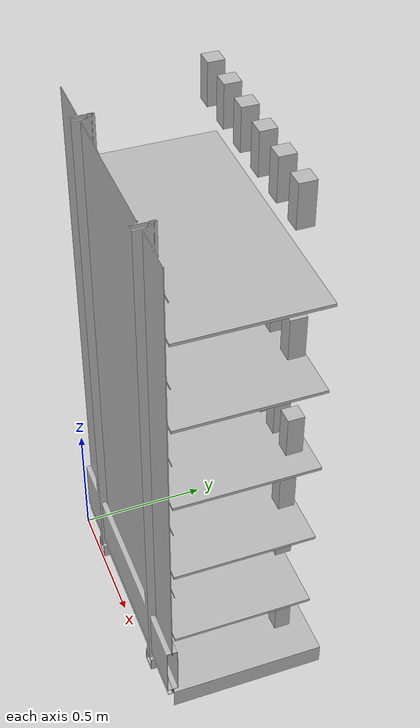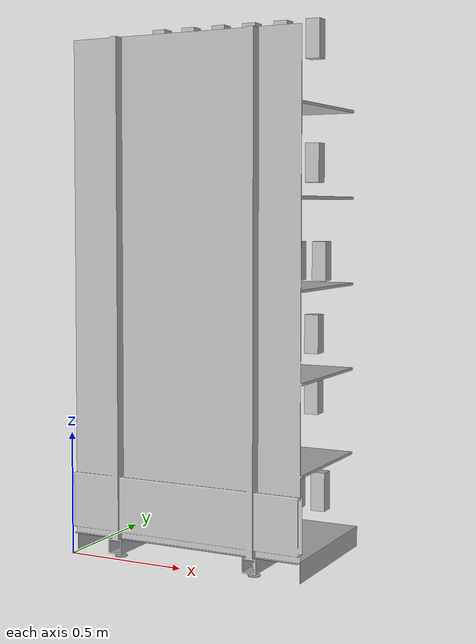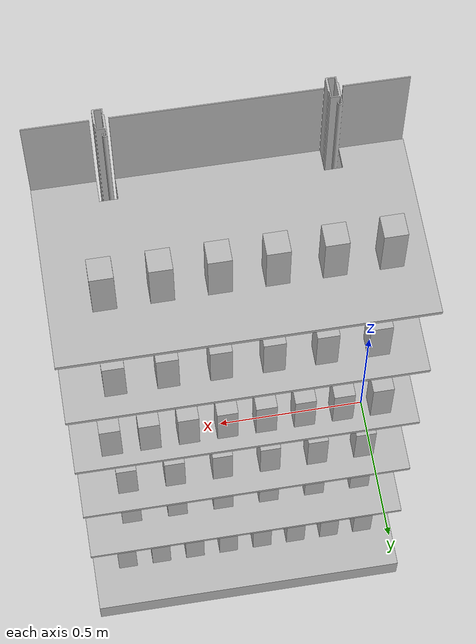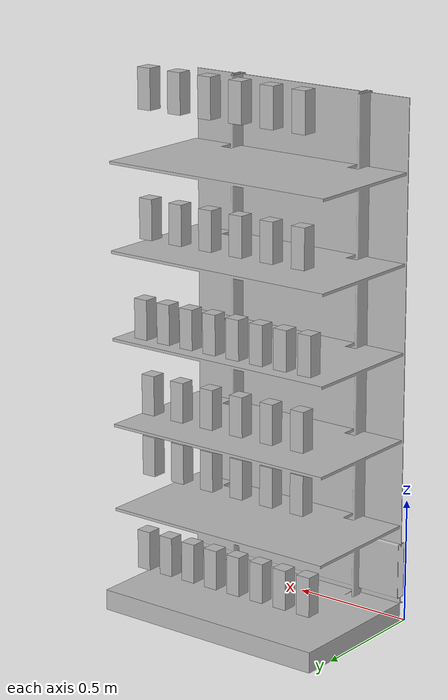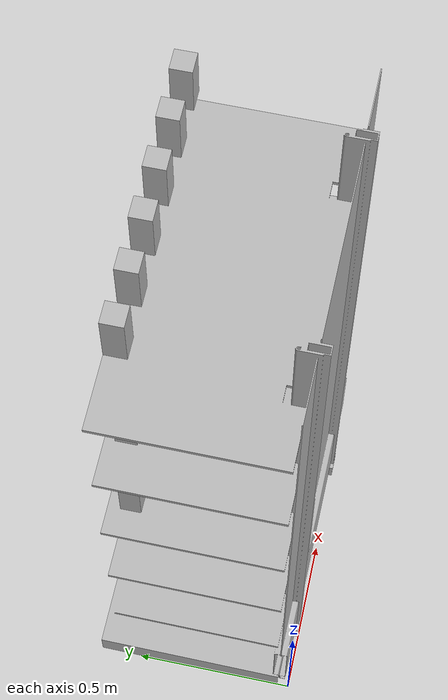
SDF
<?xml version="1.0"?>
<sdf version='1.6'>
  <model name='AH_shelf_filled_hagelslag'>
    <static>1</static>
    <link name='link'>
      <inertial>
        <mass>1</mass>
        <inertia>
          <ixx>1</ixx>
          <ixy>0</ixy>
          <ixz>0</ixz>
          <iyy>1</iyy>
          <iyz>0</iyz>
          <izz>1</izz>
        </inertia>
      </inertial>
      <pose frame=''>-0 0 0 0 0 0</pose>

      <visual name='visual'>
        <pose frame=''>0 0 0 0 0 0</pose>
        <geometry>
          <mesh>
            <uri>model://AH_shelf/AH_shelf.dae</uri>
            <scale>1 1 1</scale>
          </mesh>
        </geometry>
        <transparency>0</transparency>
        <cast_shadows>1</cast_shadows>
      </visual>

      <collision name='collision'>
        <laser_retro>0</laser_retro>
        <max_contacts>10</max_contacts>
        <pose frame=''>0 0 0 0 -0 0</pose>
        <geometry>
          <mesh>
            <uri>model://AH_shelf/AH_shelf.dae</uri>
            <scale>1 1 1</scale>
          </mesh>
        </geometry>
        <surface>
          <friction>
            <ode>
              <mu>1</mu>
              <mu2>1</mu2>
              <fdir1>0 0 0</fdir1>
              <slip1>0</slip1>
              <slip2>0</slip2>
            </ode>
            <torsional>
              <coefficient>1</coefficient>
              <patch_radius>0</patch_radius>
              <surface_radius>0</surface_radius>
              <use_patch_radius>1</use_patch_radius>
              <ode>
                <slip>0</slip>
              </ode>
            </torsional>
          </friction>
          <bounce>
            <restitution_coefficient>0</restitution_coefficient>
            <threshold>1e+06</threshold>
          </bounce>
          <contact>
            <collide_without_contact>0</collide_without_contact>
            <collide_without_contact_bitmask>1</collide_without_contact_bitmask>
            <collide_bitmask>1</collide_bitmask>
            <ode>
              <soft_cfm>0</soft_cfm>
              <soft_erp>0.2</soft_erp>
              <kp>1e+13</kp>
              <kd>1</kd>
              <max_vel>0.01</max_vel>
              <min_depth>0</min_depth>
            </ode>
            <bullet>
              <split_impulse>1</split_impulse>
              <split_impulse_penetration_threshold>-0.01</split_impulse_penetration_threshold>
              <soft_cfm>0</soft_cfm>
              <soft_erp>0.2</soft_erp>
              <kp>1e+13</kp>
              <kd>1</kd>
            </bullet>
          </contact>
        </surface>
      </collision>
    </link>

  <model name="board0">
    <pose>0 0.5 2.1 0 0 0</pose>

    <include>
      <uri>model://AH_hagelslag_melk_tag36_11_00000</uri>
      <pose>0.14285714285714285 0 0 0 0 1.57</pose>
    </include>

    <include>
      <uri>model://AH_hagelslag_melk_tag36_11_00001</uri>
      <pose>0.2857142857142857 0 0 0 0 1.57</pose>
    </include>

    <include>
      <uri>model://AH_hagelslag_melk_tag36_11_00002</uri>
      <pose>0.42857142857142855 0 0 0 0 1.57</pose>
    </include>

    <include>
      <uri>model://AH_hagelslag_melk_tag36_11_00003</uri>
      <pose>0.5714285714285714 0 0 0 0 1.57</pose>
    </include>

    <include>
      <uri>model://AH_hagelslag_melk_tag36_11_00004</uri>
      <pose>0.7142857142857142 0 0 0 0 1.57</pose>
    </include>

    <include>
      <uri>model://AH_hagelslag_melk_tag36_11_00005</uri>
      <pose>0.8571428571428571 0 0 0 0 1.57</pose>
    </include>

  </model>

  <model name="board1">
    <pose>0 0.5 1.6 0 0 0</pose>

    <include>
      <uri>model://AH_hagelslag_melk_tag36_11_00006</uri>
      <pose>0.14285714285714285 0 0 0 0 1.57</pose>
    </include>

    <include>
      <uri>model://AH_hagelslag_melk_tag36_11_00007</uri>
      <pose>0.2857142857142857 0 0 0 0 1.57</pose>
    </include>

    <include>
      <uri>model://AH_hagelslag_melk_tag36_11_00008</uri>
      <pose>0.42857142857142855 0 0 0 0 1.57</pose>
    </include>

    <include>
      <uri>model://AH_hagelslag_melk_tag36_11_00009</uri>
      <pose>0.5714285714285714 0 0 0 0 1.57</pose>
    </include>

    <include>
      <uri>model://AH_hagelslag_melk_tag36_11_00011</uri>
      <pose>0.7142857142857142 0 0 0 0 1.57</pose>
    </include>

    <include>
      <uri>model://AH_hagelslag_melk_tag36_11_00012</uri>
      <pose>0.8571428571428571 0 0 0 0 1.57</pose>
    </include>

  </model>

  <model name="board2">
    <pose>0 0.5 1.2 0 0 0</pose>

    <include>
      <uri>model://AH_hagelslag_melk_tag36_11_00013</uri>
      <pose>0.1111111111111111 0 0 0 0 1.57</pose>
    </include>

    <include>
      <uri>model://AH_hagelslag_melk_tag36_11_00014</uri>
      <pose>0.2222222222222222 0 0 0 0 1.57</pose>
    </include>

    <include>
      <uri>model://AH_hagelslag_melk_tag36_11_00015</uri>
      <pose>0.3333333333333333 0 0 0 0 1.57</pose>
    </include>

    <include>
      <uri>model://AH_hagelslag_melk_tag36_11_00016</uri>
      <pose>0.4444444444444444 0 0 0 0 1.57</pose>
    </include>

    <include>
      <uri>model://AH_hagelslag_melk_tag36_11_00017</uri>
      <pose>0.5555555555555556 0 0 0 0 1.57</pose>
    </include>

    <include>
      <uri>model://AH_hagelslag_melk_tag36_11_00018</uri>
      <pose>0.6666666666666666 0 0 0 0 1.57</pose>
    </include>

    <include>
      <uri>model://AH_hagelslag_melk_tag36_11_00019</uri>
      <pose>0.7777777777777777 0 0 0 0 1.57</pose>
    </include>

    <include>
      <uri>model://AH_hagelslag_melk_tag36_11_00020</uri>
      <pose>0.8888888888888888 0 0 0 0 1.57</pose>
    </include>

  </model>

  <model name="board3">
    <pose>0 0.5 0.9 0 0 0</pose>

    <include>
      <uri>model://AH_hagelslag_puur_tag36_11_00021</uri>
      <pose>0.14285714285714285 0 0 0 0 1.57</pose>
    </include>

    <include>
      <uri>model://AH_hagelslag_puur_tag36_11_00022</uri>
      <pose>0.2857142857142857 0 0 0 0 1.57</pose>
    </include>

    <include>
      <uri>model://AH_hagelslag_puur_tag36_11_00023</uri>
      <pose>0.42857142857142855 0 0 0 0 1.57</pose>
    </include>

    <include>
      <uri>model://AH_hagelslag_puur_tag36_11_00024</uri>
      <pose>0.5714285714285714 0 0 0 0 1.57</pose>
    </include>

    <include>
      <uri>model://AH_hagelslag_puur_tag36_11_00025</uri>
      <pose>0.7142857142857142 0 0 0 0 1.57</pose>
    </include>

    <include>
      <uri>model://AH_hagelslag_puur_tag36_11_00026</uri>
      <pose>0.8571428571428571 0 0 0 0 1.57</pose>
    </include>

  </model>

  <model name="board4">
    <pose>0 0.5 0.65 0 0 0</pose>

    <include>
      <uri>model://AH_hagelslag_puur_tag36_11_00027</uri>
      <pose>0.14285714285714285 0 0 0 0 1.57</pose>
    </include>

    <include>
      <uri>model://AH_hagelslag_puur_tag36_11_00028</uri>
      <pose>0.2857142857142857 0 0 0 0 1.57</pose>
    </include>

    <include>
      <uri>model://AH_hagelslag_puur_tag36_11_00029</uri>
      <pose>0.42857142857142855 0 0 0 0 1.57</pose>
    </include>

    <include>
      <uri>model://AH_hagelslag_puur_tag36_11_00030</uri>
      <pose>0.5714285714285714 0 0 0 0 1.57</pose>
    </include>

    <include>
      <uri>model://AH_hagelslag_puur_tag36_11_00031</uri>
      <pose>0.7142857142857142 0 0 0 0 1.57</pose>
    </include>

    <include>
      <uri>model://AH_hagelslag_puur_tag36_11_00032</uri>
      <pose>0.8571428571428571 0 0 0 0 1.57</pose>
    </include>

  </model>

  <model name="board5">
    <pose>0 0.5 0.25 0 0 0</pose>

    <include>
      <uri>model://AH_hagelslag_puur_tag36_11_00033</uri>
      <pose>0.1111111111111111 0 0 0 0 1.57</pose>
    </include>

    <include>
      <uri>model://AH_hagelslag_puur_tag36_11_00034</uri>
      <pose>0.2222222222222222 0 0 0 0 1.57</pose>
    </include>

    <include>
      <uri>model://AH_hagelslag_puur_tag36_11_00035</uri>
      <pose>0.3333333333333333 0 0 0 0 1.57</pose>
    </include>

    <include>
      <uri>model://AH_hagelslag_puur_tag36_11_00036</uri>
      <pose>0.4444444444444444 0 0 0 0 1.57</pose>
    </include>

    <include>
      <uri>model://AH_hagelslag_puur_tag36_11_00037</uri>
      <pose>0.5555555555555556 0 0 0 0 1.57</pose>
    </include>

    <include>
      <uri>model://AH_hagelslag_puur_tag36_11_00038</uri>
      <pose>0.6666666666666666 0 0 0 0 1.57</pose>
    </include>

    <include>
      <uri>model://AH_hagelslag_puur_tag36_11_00039</uri>
      <pose>0.7777777777777777 0 0 0 0 1.57</pose>
    </include>

    <include>
      <uri>model://AH_hagelslag_puur_tag36_11_00040</uri>
      <pose>0.8888888888888888 0 0 0 0 1.57</pose>
    </include>

  </model>

  </model>
</sdf>

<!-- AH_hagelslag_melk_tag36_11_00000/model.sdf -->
<sdf version='1.6'>
  <model name='AH_hagelslag_melk_tag36_11_00000'>
    <static>0</static>
    <link name='link_0'>

      <inertial>
        <mass>0.1</mass>
        <inertia>
          <ixx>1.4e-03</ixx>
          <ixy>0</ixy>
          <ixz>0</ixz>
          <iyy>1.4e-03</iyy>
          <iyz>0</iyz>
          <izz>2.8e-03</izz>
        </inertia>
      </inertial>

      <pose frame=''>-0 0 0 0 -0 0</pose>

      <visual name='visual'>
        <pose frame=''>0 0 0 0 -0 0</pose>
        <geometry>
          <mesh>
            <uri>model://AH_hagelslag_melk/AH_hagelslag_melk_tag36_11_00000/AH_hagelslag_melk_tag36_11_00000.dae</uri>
            <scale>1 1 1</scale>
          </mesh>
        </geometry>
        <transparency>0</transparency>
        <cast_shadows>1</cast_shadows>
      </visual>

      <collision name='collision'>
        <laser_retro>0</laser_retro>
        <max_contacts>10</max_contacts>
        <pose frame=''>0 0 0 0 -0 0</pose>
        <geometry>
          <mesh>
            <uri>model://AH_hagelslag_melk/AH_hagelslag_melk_tag36_11_00000/AH_hagelslag_melk_tag36_11_00000.dae</uri>
            <scale>1 1 1</scale>
          </mesh>
        </geometry>
        <surface>
          <friction>
            <ode>
              <mu>1</mu>
              <mu2>1</mu2>
              <fdir1>0 0 0</fdir1>
              <slip1>0</slip1>
              <slip2>0</slip2>
            </ode>
            <torsional>
              <coefficient>1</coefficient>
              <patch_radius>0</patch_radius>
              <surface_radius>0</surface_radius>
              <use_patch_radius>1</use_patch_radius>
              <ode>
                <slip>0</slip>
              </ode>
            </torsional>
          </friction>
          <bounce>
            <restitution_coefficient>0</restitution_coefficient>
            <threshold>1e+06</threshold>
          </bounce>
          <contact>
            <collide_without_contact>0</collide_without_contact>
            <collide_without_contact_bitmask>1</collide_without_contact_bitmask>
            <collide_bitmask>1</collide_bitmask>
            <ode>
              <soft_cfm>0</soft_cfm>
              <soft_erp>0.2</soft_erp>
              <kp>1e+13</kp>
              <kd>1</kd>
              <max_vel>0.01</max_vel>
              <min_depth>0</min_depth>
            </ode>
            <bullet>
              <split_impulse>1</split_impulse>
              <split_impulse_penetration_threshold>-0.01</split_impulse_penetration_threshold>
              <soft_cfm>0</soft_cfm>
              <soft_erp>0.2</soft_erp>
              <kp>1e+13</kp>
              <kd>1</kd>
            </bullet>
          </contact>
        </surface>
      </collision>

    </link>
  </model>
</sdf>

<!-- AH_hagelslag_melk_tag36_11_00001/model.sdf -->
<sdf version='1.6'>
  <model name='AH_hagelslag_melk_tag36_11_00001'>
    <static>0</static>
    <link name='link_0'>

      <inertial>
        <mass>0.1</mass>
        <inertia>
          <ixx>1.4e-03</ixx>
          <ixy>0</ixy>
          <ixz>0</ixz>
          <iyy>1.4e-03</iyy>
          <iyz>0</iyz>
          <izz>2.8e-03</izz>
        </inertia>
      </inertial>

      <pose frame=''>-0 0 0 0 -0 0</pose>

      <visual name='visual'>
        <pose frame=''>0 0 0 0 -0 0</pose>
        <geometry>
          <mesh>
            <uri>model://AH_hagelslag_melk/AH_hagelslag_melk_tag36_11_00001/AH_hagelslag_melk_tag36_11_00001.dae</uri>
            <scale>1 1 1</scale>
          </mesh>
        </geometry>
        <transparency>0</transparency>
        <cast_shadows>1</cast_shadows>
      </visual>

      <collision name='collision'>
        <laser_retro>0</laser_retro>
        <max_contacts>10</max_contacts>
        <pose frame=''>0 0 0 0 -0 0</pose>
        <geometry>
          <mesh>
            <uri>model://AH_hagelslag_melk/AH_hagelslag_melk_tag36_11_00001/AH_hagelslag_melk_tag36_11_00001.dae</uri>
            <scale>1 1 1</scale>
          </mesh>
        </geometry>
        <surface>
          <friction>
            <ode>
              <mu>1</mu>
              <mu2>1</mu2>
              <fdir1>0 0 0</fdir1>
              <slip1>0</slip1>
              <slip2>0</slip2>
            </ode>
            <torsional>
              <coefficient>1</coefficient>
              <patch_radius>0</patch_radius>
              <surface_radius>0</surface_radius>
              <use_patch_radius>1</use_patch_radius>
              <ode>
                <slip>0</slip>
              </ode>
            </torsional>
          </friction>
          <bounce>
            <restitution_coefficient>0</restitution_coefficient>
            <threshold>1e+06</threshold>
          </bounce>
          <contact>
            <collide_without_contact>0</collide_without_contact>
            <collide_without_contact_bitmask>1</collide_without_contact_bitmask>
            <collide_bitmask>1</collide_bitmask>
            <ode>
              <soft_cfm>0</soft_cfm>
              <soft_erp>0.2</soft_erp>
              <kp>1e+13</kp>
              <kd>1</kd>
              <max_vel>0.01</max_vel>
              <min_depth>0</min_depth>
            </ode>
            <bullet>
              <split_impulse>1</split_impulse>
              <split_impulse_penetration_threshold>-0.01</split_impulse_penetration_threshold>
              <soft_cfm>0</soft_cfm>
              <soft_erp>0.2</soft_erp>
              <kp>1e+13</kp>
              <kd>1</kd>
            </bullet>
          </contact>
        </surface>
      </collision>

    </link>
  </model>
</sdf>

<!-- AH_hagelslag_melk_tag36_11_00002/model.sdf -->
<sdf version='1.6'>
  <model name='AH_hagelslag_melk_tag36_11_00002'>
    <static>0</static>
    <link name='link_0'>

      <inertial>
        <mass>0.1</mass>
        <inertia>
          <ixx>1.4e-03</ixx>
          <ixy>0</ixy>
          <ixz>0</ixz>
          <iyy>1.4e-03</iyy>
          <iyz>0</iyz>
          <izz>2.8e-03</izz>
        </inertia>
      </inertial>

      <pose frame=''>-0 0 0 0 -0 0</pose>

      <visual name='visual'>
        <pose frame=''>0 0 0 0 -0 0</pose>
        <geometry>
          <mesh>
            <uri>model://AH_hagelslag_melk/AH_hagelslag_melk_tag36_11_00002/AH_hagelslag_melk_tag36_11_00002.dae</uri>
            <scale>1 1 1</scale>
          </mesh>
        </geometry>
        <transparency>0</transparency>
        <cast_shadows>1</cast_shadows>
      </visual>

      <collision name='collision'>
        <laser_retro>0</laser_retro>
        <max_contacts>10</max_contacts>
        <pose frame=''>0 0 0 0 -0 0</pose>
        <geometry>
          <mesh>
            <uri>model://AH_hagelslag_melk/AH_hagelslag_melk_tag36_11_00002/AH_hagelslag_melk_tag36_11_00002.dae</uri>
            <scale>1 1 1</scale>
          </mesh>
        </geometry>
        <surface>
          <friction>
            <ode>
              <mu>1</mu>
              <mu2>1</mu2>
              <fdir1>0 0 0</fdir1>
              <slip1>0</slip1>
              <slip2>0</slip2>
            </ode>
            <torsional>
              <coefficient>1</coefficient>
              <patch_radius>0</patch_radius>
              <surface_radius>0</surface_radius>
              <use_patch_radius>1</use_patch_radius>
              <ode>
                <slip>0</slip>
              </ode>
            </torsional>
          </friction>
          <bounce>
            <restitution_coefficient>0</restitution_coefficient>
            <threshold>1e+06</threshold>
          </bounce>
          <contact>
            <collide_without_contact>0</collide_without_contact>
            <collide_without_contact_bitmask>1</collide_without_contact_bitmask>
            <collide_bitmask>1</collide_bitmask>
            <ode>
              <soft_cfm>0</soft_cfm>
              <soft_erp>0.2</soft_erp>
              <kp>1e+13</kp>
              <kd>1</kd>
              <max_vel>0.01</max_vel>
              <min_depth>0</min_depth>
            </ode>
            <bullet>
              <split_impulse>1</split_impulse>
              <split_impulse_penetration_threshold>-0.01</split_impulse_penetration_threshold>
              <soft_cfm>0</soft_cfm>
              <soft_erp>0.2</soft_erp>
              <kp>1e+13</kp>
              <kd>1</kd>
            </bullet>
          </contact>
        </surface>
      </collision>

    </link>
  </model>
</sdf>

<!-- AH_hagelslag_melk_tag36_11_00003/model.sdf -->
<sdf version='1.6'>
  <model name='AH_hagelslag_melk_tag36_11_00003'>
    <static>0</static>
    <link name='link_0'>

      <inertial>
        <mass>0.1</mass>
        <inertia>
          <ixx>1.4e-03</ixx>
          <ixy>0</ixy>
          <ixz>0</ixz>
          <iyy>1.4e-03</iyy>
          <iyz>0</iyz>
          <izz>2.8e-03</izz>
        </inertia>
      </inertial>

      <pose frame=''>-0 0 0 0 -0 0</pose>

      <visual name='visual'>
        <pose frame=''>0 0 0 0 -0 0</pose>
        <geometry>
          <mesh>
            <uri>model://AH_hagelslag_melk/AH_hagelslag_melk_tag36_11_00003/AH_hagelslag_melk_tag36_11_00003.dae</uri>
            <scale>1 1 1</scale>
          </mesh>
        </geometry>
        <transparency>0</transparency>
        <cast_shadows>1</cast_shadows>
      </visual>

      <collision name='collision'>
        <laser_retro>0</laser_retro>
        <max_contacts>10</max_contacts>
        <pose frame=''>0 0 0 0 -0 0</pose>
        <geometry>
          <mesh>
            <uri>model://AH_hagelslag_melk/AH_hagelslag_melk_tag36_11_00003/AH_hagelslag_melk_tag36_11_00003.dae</uri>
            <scale>1 1 1</scale>
          </mesh>
        </geometry>
        <surface>
          <friction>
            <ode>
              <mu>1</mu>
              <mu2>1</mu2>
              <fdir1>0 0 0</fdir1>
              <slip1>0</slip1>
              <slip2>0</slip2>
            </ode>
            <torsional>
              <coefficient>1</coefficient>
              <patch_radius>0</patch_radius>
              <surface_radius>0</surface_radius>
              <use_patch_radius>1</use_patch_radius>
              <ode>
                <slip>0</slip>
              </ode>
            </torsional>
          </friction>
          <bounce>
            <restitution_coefficient>0</restitution_coefficient>
            <threshold>1e+06</threshold>
          </bounce>
          <contact>
            <collide_without_contact>0</collide_without_contact>
            <collide_without_contact_bitmask>1</collide_without_contact_bitmask>
            <collide_bitmask>1</collide_bitmask>
            <ode>
              <soft_cfm>0</soft_cfm>
              <soft_erp>0.2</soft_erp>
              <kp>1e+13</kp>
              <kd>1</kd>
              <max_vel>0.01</max_vel>
              <min_depth>0</min_depth>
            </ode>
            <bullet>
              <split_impulse>1</split_impulse>
              <split_impulse_penetration_threshold>-0.01</split_impulse_penetration_threshold>
              <soft_cfm>0</soft_cfm>
              <soft_erp>0.2</soft_erp>
              <kp>1e+13</kp>
              <kd>1</kd>
            </bullet>
          </contact>
        </surface>
      </collision>

    </link>
  </model>
</sdf>

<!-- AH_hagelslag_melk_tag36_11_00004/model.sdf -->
<sdf version='1.6'>
  <model name='AH_hagelslag_melk_tag36_11_00004'>
    <static>0</static>
    <link name='link_0'>

      <inertial>
        <mass>0.1</mass>
        <inertia>
          <ixx>1.4e-03</ixx>
          <ixy>0</ixy>
          <ixz>0</ixz>
          <iyy>1.4e-03</iyy>
          <iyz>0</iyz>
          <izz>2.8e-03</izz>
        </inertia>
      </inertial>

      <pose frame=''>-0 0 0 0 -0 0</pose>

      <visual name='visual'>
        <pose frame=''>0 0 0 0 -0 0</pose>
        <geometry>
          <mesh>
            <uri>model://AH_hagelslag_melk/AH_hagelslag_melk_tag36_11_00004/AH_hagelslag_melk_tag36_11_00004.dae</uri>
            <scale>1 1 1</scale>
          </mesh>
        </geometry>
        <transparency>0</transparency>
        <cast_shadows>1</cast_shadows>
      </visual>

      <collision name='collision'>
        <laser_retro>0</laser_retro>
        <max_contacts>10</max_contacts>
        <pose frame=''>0 0 0 0 -0 0</pose>
        <geometry>
          <mesh>
            <uri>model://AH_hagelslag_melk/AH_hagelslag_melk_tag36_11_00004/AH_hagelslag_melk_tag36_11_00004.dae</uri>
            <scale>1 1 1</scale>
          </mesh>
        </geometry>
        <surface>
          <friction>
            <ode>
              <mu>1</mu>
              <mu2>1</mu2>
              <fdir1>0 0 0</fdir1>
              <slip1>0</slip1>
              <slip2>0</slip2>
            </ode>
            <torsional>
              <coefficient>1</coefficient>
              <patch_radius>0</patch_radius>
              <surface_radius>0</surface_radius>
              <use_patch_radius>1</use_patch_radius>
              <ode>
                <slip>0</slip>
              </ode>
            </torsional>
          </friction>
          <bounce>
            <restitution_coefficient>0</restitution_coefficient>
            <threshold>1e+06</threshold>
          </bounce>
          <contact>
            <collide_without_contact>0</collide_without_contact>
            <collide_without_contact_bitmask>1</collide_without_contact_bitmask>
            <collide_bitmask>1</collide_bitmask>
            <ode>
              <soft_cfm>0</soft_cfm>
              <soft_erp>0.2</soft_erp>
              <kp>1e+13</kp>
              <kd>1</kd>
              <max_vel>0.01</max_vel>
              <min_depth>0</min_depth>
            </ode>
            <bullet>
              <split_impulse>1</split_impulse>
              <split_impulse_penetration_threshold>-0.01</split_impulse_penetration_threshold>
              <soft_cfm>0</soft_cfm>
              <soft_erp>0.2</soft_erp>
              <kp>1e+13</kp>
              <kd>1</kd>
            </bullet>
          </contact>
        </surface>
      </collision>

    </link>
  </model>
</sdf>

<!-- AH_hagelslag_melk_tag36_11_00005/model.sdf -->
<sdf version='1.6'>
  <model name='AH_hagelslag_melk_tag36_11_00005'>
    <static>0</static>
    <link name='link_0'>

      <inertial>
        <mass>0.1</mass>
        <inertia>
          <ixx>1.4e-03</ixx>
          <ixy>0</ixy>
          <ixz>0</ixz>
          <iyy>1.4e-03</iyy>
          <iyz>0</iyz>
          <izz>2.8e-03</izz>
        </inertia>
      </inertial>

      <pose frame=''>-0 0 0 0 -0 0</pose>

      <visual name='visual'>
        <pose frame=''>0 0 0 0 -0 0</pose>
        <geometry>
          <mesh>
            <uri>model://AH_hagelslag_melk/AH_hagelslag_melk_tag36_11_00005/AH_hagelslag_melk_tag36_11_00005.dae</uri>
            <scale>1 1 1</scale>
          </mesh>
        </geometry>
        <transparency>0</transparency>
        <cast_shadows>1</cast_shadows>
      </visual>

      <collision name='collision'>
        <laser_retro>0</laser_retro>
        <max_contacts>10</max_contacts>
        <pose frame=''>0 0 0 0 -0 0</pose>
        <geometry>
          <mesh>
            <uri>model://AH_hagelslag_melk/AH_hagelslag_melk_tag36_11_00005/AH_hagelslag_melk_tag36_11_00005.dae</uri>
            <scale>1 1 1</scale>
          </mesh>
        </geometry>
        <surface>
          <friction>
            <ode>
              <mu>1</mu>
              <mu2>1</mu2>
              <fdir1>0 0 0</fdir1>
              <slip1>0</slip1>
              <slip2>0</slip2>
            </ode>
            <torsional>
              <coefficient>1</coefficient>
              <patch_radius>0</patch_radius>
              <surface_radius>0</surface_radius>
              <use_patch_radius>1</use_patch_radius>
              <ode>
                <slip>0</slip>
              </ode>
            </torsional>
          </friction>
          <bounce>
            <restitution_coefficient>0</restitution_coefficient>
            <threshold>1e+06</threshold>
          </bounce>
          <contact>
            <collide_without_contact>0</collide_without_contact>
            <collide_without_contact_bitmask>1</collide_without_contact_bitmask>
            <collide_bitmask>1</collide_bitmask>
            <ode>
              <soft_cfm>0</soft_cfm>
              <soft_erp>0.2</soft_erp>
              <kp>1e+13</kp>
              <kd>1</kd>
              <max_vel>0.01</max_vel>
              <min_depth>0</min_depth>
            </ode>
            <bullet>
              <split_impulse>1</split_impulse>
              <split_impulse_penetration_threshold>-0.01</split_impulse_penetration_threshold>
              <soft_cfm>0</soft_cfm>
              <soft_erp>0.2</soft_erp>
              <kp>1e+13</kp>
              <kd>1</kd>
            </bullet>
          </contact>
        </surface>
      </collision>

    </link>
  </model>
</sdf>

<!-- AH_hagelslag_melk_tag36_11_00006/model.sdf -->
<sdf version='1.6'>
  <model name='AH_hagelslag_melk_tag36_11_00006'>
    <static>0</static>
    <link name='link_0'>

      <inertial>
        <mass>0.1</mass>
        <inertia>
          <ixx>1.4e-03</ixx>
          <ixy>0</ixy>
          <ixz>0</ixz>
          <iyy>1.4e-03</iyy>
          <iyz>0</iyz>
          <izz>2.8e-03</izz>
        </inertia>
      </inertial>

      <pose frame=''>-0 0 0 0 -0 0</pose>

      <visual name='visual'>
        <pose frame=''>0 0 0 0 -0 0</pose>
        <geometry>
          <mesh>
            <uri>model://AH_hagelslag_melk/AH_hagelslag_melk_tag36_11_00006/AH_hagelslag_melk_tag36_11_00006.dae</uri>
            <scale>1 1 1</scale>
          </mesh>
        </geometry>
        <transparency>0</transparency>
        <cast_shadows>1</cast_shadows>
      </visual>

      <collision name='collision'>
        <laser_retro>0</laser_retro>
        <max_contacts>10</max_contacts>
        <pose frame=''>0 0 0 0 -0 0</pose>
        <geometry>
          <mesh>
            <uri>model://AH_hagelslag_melk/AH_hagelslag_melk_tag36_11_00006/AH_hagelslag_melk_tag36_11_00006.dae</uri>
            <scale>1 1 1</scale>
          </mesh>
        </geometry>
        <surface>
          <friction>
            <ode>
              <mu>1</mu>
              <mu2>1</mu2>
              <fdir1>0 0 0</fdir1>
              <slip1>0</slip1>
              <slip2>0</slip2>
            </ode>
            <torsional>
              <coefficient>1</coefficient>
              <patch_radius>0</patch_radius>
              <surface_radius>0</surface_radius>
              <use_patch_radius>1</use_patch_radius>
              <ode>
                <slip>0</slip>
              </ode>
            </torsional>
          </friction>
          <bounce>
            <restitution_coefficient>0</restitution_coefficient>
            <threshold>1e+06</threshold>
          </bounce>
          <contact>
            <collide_without_contact>0</collide_without_contact>
            <collide_without_contact_bitmask>1</collide_without_contact_bitmask>
            <collide_bitmask>1</collide_bitmask>
            <ode>
              <soft_cfm>0</soft_cfm>
              <soft_erp>0.2</soft_erp>
              <kp>1e+13</kp>
              <kd>1</kd>
              <max_vel>0.01</max_vel>
              <min_depth>0</min_depth>
            </ode>
            <bullet>
              <split_impulse>1</split_impulse>
              <split_impulse_penetration_threshold>-0.01</split_impulse_penetration_threshold>
              <soft_cfm>0</soft_cfm>
              <soft_erp>0.2</soft_erp>
              <kp>1e+13</kp>
              <kd>1</kd>
            </bullet>
          </contact>
        </surface>
      </collision>

    </link>
  </model>
</sdf>

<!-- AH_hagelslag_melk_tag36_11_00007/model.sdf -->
<sdf version='1.6'>
  <model name='AH_hagelslag_melk_tag36_11_00007'>
    <static>0</static>
    <link name='link_0'>

      <inertial>
        <mass>0.1</mass>
        <inertia>
          <ixx>1.4e-03</ixx>
          <ixy>0</ixy>
          <ixz>0</ixz>
          <iyy>1.4e-03</iyy>
          <iyz>0</iyz>
          <izz>2.8e-03</izz>
        </inertia>
      </inertial>

      <pose frame=''>-0 0 0 0 -0 0</pose>

      <visual name='visual'>
        <pose frame=''>0 0 0 0 -0 0</pose>
        <geometry>
          <mesh>
            <uri>model://AH_hagelslag_melk/AH_hagelslag_melk_tag36_11_00007/AH_hagelslag_melk_tag36_11_00007.dae</uri>
            <scale>1 1 1</scale>
          </mesh>
        </geometry>
        <transparency>0</transparency>
        <cast_shadows>1</cast_shadows>
      </visual>

      <collision name='collision'>
        <laser_retro>0</laser_retro>
        <max_contacts>10</max_contacts>
        <pose frame=''>0 0 0 0 -0 0</pose>
        <geometry>
          <mesh>
            <uri>model://AH_hagelslag_melk/AH_hagelslag_melk_tag36_11_00007/AH_hagelslag_melk_tag36_11_00007.dae</uri>
            <scale>1 1 1</scale>
          </mesh>
        </geometry>
        <surface>
          <friction>
            <ode>
              <mu>1</mu>
              <mu2>1</mu2>
              <fdir1>0 0 0</fdir1>
              <slip1>0</slip1>
              <slip2>0</slip2>
            </ode>
            <torsional>
              <coefficient>1</coefficient>
              <patch_radius>0</patch_radius>
              <surface_radius>0</surface_radius>
              <use_patch_radius>1</use_patch_radius>
              <ode>
                <slip>0</slip>
              </ode>
            </torsional>
          </friction>
          <bounce>
            <restitution_coefficient>0</restitution_coefficient>
            <threshold>1e+06</threshold>
          </bounce>
          <contact>
            <collide_without_contact>0</collide_without_contact>
            <collide_without_contact_bitmask>1</collide_without_contact_bitmask>
            <collide_bitmask>1</collide_bitmask>
            <ode>
              <soft_cfm>0</soft_cfm>
              <soft_erp>0.2</soft_erp>
              <kp>1e+13</kp>
              <kd>1</kd>
              <max_vel>0.01</max_vel>
              <min_depth>0</min_depth>
            </ode>
            <bullet>
              <split_impulse>1</split_impulse>
              <split_impulse_penetration_threshold>-0.01</split_impulse_penetration_threshold>
              <soft_cfm>0</soft_cfm>
              <soft_erp>0.2</soft_erp>
              <kp>1e+13</kp>
              <kd>1</kd>
            </bullet>
          </contact>
        </surface>
      </collision>

    </link>
  </model>
</sdf>

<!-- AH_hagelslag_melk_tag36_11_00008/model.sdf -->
<sdf version='1.6'>
  <model name='AH_hagelslag_melk_tag36_11_00008'>
    <static>0</static>
    <link name='link_0'>

      <inertial>
        <mass>0.1</mass>
        <inertia>
          <ixx>1.4e-03</ixx>
          <ixy>0</ixy>
          <ixz>0</ixz>
          <iyy>1.4e-03</iyy>
          <iyz>0</iyz>
          <izz>2.8e-03</izz>
        </inertia>
      </inertial>

      <pose frame=''>-0 0 0 0 -0 0</pose>

      <visual name='visual'>
        <pose frame=''>0 0 0 0 -0 0</pose>
        <geometry>
          <mesh>
            <uri>model://AH_hagelslag_melk/AH_hagelslag_melk_tag36_11_00008/AH_hagelslag_melk_tag36_11_00008.dae</uri>
            <scale>1 1 1</scale>
          </mesh>
        </geometry>
        <transparency>0</transparency>
        <cast_shadows>1</cast_shadows>
      </visual>

      <collision name='collision'>
        <laser_retro>0</laser_retro>
        <max_contacts>10</max_contacts>
        <pose frame=''>0 0 0 0 -0 0</pose>
        <geometry>
          <mesh>
            <uri>model://AH_hagelslag_melk/AH_hagelslag_melk_tag36_11_00008/AH_hagelslag_melk_tag36_11_00008.dae</uri>
            <scale>1 1 1</scale>
          </mesh>
        </geometry>
        <surface>
          <friction>
            <ode>
              <mu>1</mu>
              <mu2>1</mu2>
              <fdir1>0 0 0</fdir1>
              <slip1>0</slip1>
              <slip2>0</slip2>
            </ode>
            <torsional>
              <coefficient>1</coefficient>
              <patch_radius>0</patch_radius>
              <surface_radius>0</surface_radius>
              <use_patch_radius>1</use_patch_radius>
              <ode>
                <slip>0</slip>
              </ode>
            </torsional>
          </friction>
          <bounce>
            <restitution_coefficient>0</restitution_coefficient>
            <threshold>1e+06</threshold>
          </bounce>
          <contact>
            <collide_without_contact>0</collide_without_contact>
            <collide_without_contact_bitmask>1</collide_without_contact_bitmask>
            <collide_bitmask>1</collide_bitmask>
            <ode>
              <soft_cfm>0</soft_cfm>
              <soft_erp>0.2</soft_erp>
              <kp>1e+13</kp>
              <kd>1</kd>
              <max_vel>0.01</max_vel>
              <min_depth>0</min_depth>
            </ode>
            <bullet>
              <split_impulse>1</split_impulse>
              <split_impulse_penetration_threshold>-0.01</split_impulse_penetration_threshold>
              <soft_cfm>0</soft_cfm>
              <soft_erp>0.2</soft_erp>
              <kp>1e+13</kp>
              <kd>1</kd>
            </bullet>
          </contact>
        </surface>
      </collision>

    </link>
  </model>
</sdf>

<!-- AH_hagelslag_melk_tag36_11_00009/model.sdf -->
<sdf version='1.6'>
  <model name='AH_hagelslag_melk_tag36_11_00009'>
    <static>0</static>
    <link name='link_0'>

      <inertial>
        <mass>0.1</mass>
        <inertia>
          <ixx>1.4e-03</ixx>
          <ixy>0</ixy>
          <ixz>0</ixz>
          <iyy>1.4e-03</iyy>
          <iyz>0</iyz>
          <izz>2.8e-03</izz>
        </inertia>
      </inertial>

      <pose frame=''>-0 0 0 0 -0 0</pose>

      <visual name='visual'>
        <pose frame=''>0 0 0 0 -0 0</pose>
        <geometry>
          <mesh>
            <uri>model://AH_hagelslag_melk/AH_hagelslag_melk_tag36_11_00009/AH_hagelslag_melk_tag36_11_00009.dae</uri>
            <scale>1 1 1</scale>
          </mesh>
        </geometry>
        <transparency>0</transparency>
        <cast_shadows>1</cast_shadows>
      </visual>

      <collision name='collision'>
        <laser_retro>0</laser_retro>
        <max_contacts>10</max_contacts>
        <pose frame=''>0 0 0 0 -0 0</pose>
        <geometry>
          <mesh>
            <uri>model://AH_hagelslag_melk/AH_hagelslag_melk_tag36_11_00009/AH_hagelslag_melk_tag36_11_00009.dae</uri>
            <scale>1 1 1</scale>
          </mesh>
        </geometry>
        <surface>
          <friction>
            <ode>
              <mu>1</mu>
              <mu2>1</mu2>
              <fdir1>0 0 0</fdir1>
              <slip1>0</slip1>
              <slip2>0</slip2>
            </ode>
            <torsional>
              <coefficient>1</coefficient>
              <patch_radius>0</patch_radius>
              <surface_radius>0</surface_radius>
              <use_patch_radius>1</use_patch_radius>
              <ode>
                <slip>0</slip>
              </ode>
            </torsional>
          </friction>
          <bounce>
            <restitution_coefficient>0</restitution_coefficient>
            <threshold>1e+06</threshold>
          </bounce>
          <contact>
            <collide_without_contact>0</collide_without_contact>
            <collide_without_contact_bitmask>1</collide_without_contact_bitmask>
            <collide_bitmask>1</collide_bitmask>
            <ode>
              <soft_cfm>0</soft_cfm>
              <soft_erp>0.2</soft_erp>
              <kp>1e+13</kp>
              <kd>1</kd>
              <max_vel>0.01</max_vel>
              <min_depth>0</min_depth>
            </ode>
            <bullet>
              <split_impulse>1</split_impulse>
              <split_impulse_penetration_threshold>-0.01</split_impulse_penetration_threshold>
              <soft_cfm>0</soft_cfm>
              <soft_erp>0.2</soft_erp>
              <kp>1e+13</kp>
              <kd>1</kd>
            </bullet>
          </contact>
        </surface>
      </collision>

    </link>
  </model>
</sdf>

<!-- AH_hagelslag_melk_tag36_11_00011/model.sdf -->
<sdf version='1.6'>
  <model name='AH_hagelslag_melk_tag36_11_00011'>
    <static>0</static>
    <link name='link_0'>

      <inertial>
        <mass>0.1</mass>
        <inertia>
          <ixx>1.4e-03</ixx>
          <ixy>0</ixy>
          <ixz>0</ixz>
          <iyy>1.4e-03</iyy>
          <iyz>0</iyz>
          <izz>2.8e-03</izz>
        </inertia>
      </inertial>

      <pose frame=''>-0 0 0 0 -0 0</pose>

      <visual name='visual'>
        <pose frame=''>0 0 0 0 -0 0</pose>
        <geometry>
          <mesh>
            <uri>model://AH_hagelslag_melk/AH_hagelslag_melk_tag36_11_00011/AH_hagelslag_melk_tag36_11_00011.dae</uri>
            <scale>1 1 1</scale>
          </mesh>
        </geometry>
        <transparency>0</transparency>
        <cast_shadows>1</cast_shadows>
      </visual>

      <collision name='collision'>
        <laser_retro>0</laser_retro>
        <max_contacts>10</max_contacts>
        <pose frame=''>0 0 0 0 -0 0</pose>
        <geometry>
          <mesh>
            <uri>model://AH_hagelslag_melk/AH_hagelslag_melk_tag36_11_00011/AH_hagelslag_melk_tag36_11_00011.dae</uri>
            <scale>1 1 1</scale>
          </mesh>
        </geometry>
        <surface>
          <friction>
            <ode>
              <mu>1</mu>
              <mu2>1</mu2>
              <fdir1>0 0 0</fdir1>
              <slip1>0</slip1>
              <slip2>0</slip2>
            </ode>
            <torsional>
              <coefficient>1</coefficient>
              <patch_radius>0</patch_radius>
              <surface_radius>0</surface_radius>
              <use_patch_radius>1</use_patch_radius>
              <ode>
                <slip>0</slip>
              </ode>
            </torsional>
          </friction>
          <bounce>
            <restitution_coefficient>0</restitution_coefficient>
            <threshold>1e+06</threshold>
          </bounce>
          <contact>
            <collide_without_contact>0</collide_without_contact>
            <collide_without_contact_bitmask>1</collide_without_contact_bitmask>
            <collide_bitmask>1</collide_bitmask>
            <ode>
              <soft_cfm>0</soft_cfm>
              <soft_erp>0.2</soft_erp>
              <kp>1e+13</kp>
              <kd>1</kd>
              <max_vel>0.01</max_vel>
              <min_depth>0</min_depth>
            </ode>
            <bullet>
              <split_impulse>1</split_impulse>
              <split_impulse_penetration_threshold>-0.01</split_impulse_penetration_threshold>
              <soft_cfm>0</soft_cfm>
              <soft_erp>0.2</soft_erp>
              <kp>1e+13</kp>
              <kd>1</kd>
            </bullet>
          </contact>
        </surface>
      </collision>

    </link>
  </model>
</sdf>

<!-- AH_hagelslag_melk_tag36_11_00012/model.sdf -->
<sdf version='1.6'>
  <model name='AH_hagelslag_melk_tag36_11_00012'>
    <static>0</static>
    <link name='link_0'>

      <inertial>
        <mass>0.1</mass>
        <inertia>
          <ixx>1.4e-03</ixx>
          <ixy>0</ixy>
          <ixz>0</ixz>
          <iyy>1.4e-03</iyy>
          <iyz>0</iyz>
          <izz>2.8e-03</izz>
        </inertia>
      </inertial>

      <pose frame=''>-0 0 0 0 -0 0</pose>

      <visual name='visual'>
        <pose frame=''>0 0 0 0 -0 0</pose>
        <geometry>
          <mesh>
            <uri>model://AH_hagelslag_melk/AH_hagelslag_melk_tag36_11_00012/AH_hagelslag_melk_tag36_11_00012.dae</uri>
            <scale>1 1 1</scale>
          </mesh>
        </geometry>
        <transparency>0</transparency>
        <cast_shadows>1</cast_shadows>
      </visual>

      <collision name='collision'>
        <laser_retro>0</laser_retro>
        <max_contacts>10</max_contacts>
        <pose frame=''>0 0 0 0 -0 0</pose>
        <geometry>
          <mesh>
            <uri>model://AH_hagelslag_melk/AH_hagelslag_melk_tag36_11_00012/AH_hagelslag_melk_tag36_11_00012.dae</uri>
            <scale>1 1 1</scale>
          </mesh>
        </geometry>
        <surface>
          <friction>
            <ode>
              <mu>1</mu>
              <mu2>1</mu2>
              <fdir1>0 0 0</fdir1>
              <slip1>0</slip1>
              <slip2>0</slip2>
            </ode>
            <torsional>
              <coefficient>1</coefficient>
              <patch_radius>0</patch_radius>
              <surface_radius>0</surface_radius>
              <use_patch_radius>1</use_patch_radius>
              <ode>
                <slip>0</slip>
              </ode>
            </torsional>
          </friction>
          <bounce>
            <restitution_coefficient>0</restitution_coefficient>
            <threshold>1e+06</threshold>
          </bounce>
          <contact>
            <collide_without_contact>0</collide_without_contact>
            <collide_without_contact_bitmask>1</collide_without_contact_bitmask>
            <collide_bitmask>1</collide_bitmask>
            <ode>
              <soft_cfm>0</soft_cfm>
              <soft_erp>0.2</soft_erp>
              <kp>1e+13</kp>
              <kd>1</kd>
              <max_vel>0.01</max_vel>
              <min_depth>0</min_depth>
            </ode>
            <bullet>
              <split_impulse>1</split_impulse>
              <split_impulse_penetration_threshold>-0.01</split_impulse_penetration_threshold>
              <soft_cfm>0</soft_cfm>
              <soft_erp>0.2</soft_erp>
              <kp>1e+13</kp>
              <kd>1</kd>
            </bullet>
          </contact>
        </surface>
      </collision>

    </link>
  </model>
</sdf>

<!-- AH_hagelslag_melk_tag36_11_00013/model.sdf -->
<sdf version='1.6'>
  <model name='AH_hagelslag_melk_tag36_11_00013'>
    <static>0</static>
    <link name='link_0'>

      <inertial>
        <mass>0.1</mass>
        <inertia>
          <ixx>1.4e-03</ixx>
          <ixy>0</ixy>
          <ixz>0</ixz>
          <iyy>1.4e-03</iyy>
          <iyz>0</iyz>
          <izz>2.8e-03</izz>
        </inertia>
      </inertial>

      <pose frame=''>-0 0 0 0 -0 0</pose>

      <visual name='visual'>
        <pose frame=''>0 0 0 0 -0 0</pose>
        <geometry>
          <mesh>
            <uri>model://AH_hagelslag_melk/AH_hagelslag_melk_tag36_11_00013/AH_hagelslag_melk_tag36_11_00013.dae</uri>
            <scale>1 1 1</scale>
          </mesh>
        </geometry>
        <transparency>0</transparency>
        <cast_shadows>1</cast_shadows>
      </visual>

      <collision name='collision'>
        <laser_retro>0</laser_retro>
        <max_contacts>10</max_contacts>
        <pose frame=''>0 0 0 0 -0 0</pose>
        <geometry>
          <mesh>
            <uri>model://AH_hagelslag_melk/AH_hagelslag_melk_tag36_11_00013/AH_hagelslag_melk_tag36_11_00013.dae</uri>
            <scale>1 1 1</scale>
          </mesh>
        </geometry>
        <surface>
          <friction>
            <ode>
              <mu>1</mu>
              <mu2>1</mu2>
              <fdir1>0 0 0</fdir1>
              <slip1>0</slip1>
              <slip2>0</slip2>
            </ode>
            <torsional>
              <coefficient>1</coefficient>
              <patch_radius>0</patch_radius>
              <surface_radius>0</surface_radius>
              <use_patch_radius>1</use_patch_radius>
              <ode>
                <slip>0</slip>
              </ode>
            </torsional>
          </friction>
          <bounce>
            <restitution_coefficient>0</restitution_coefficient>
            <threshold>1e+06</threshold>
          </bounce>
          <contact>
            <collide_without_contact>0</collide_without_contact>
            <collide_without_contact_bitmask>1</collide_without_contact_bitmask>
            <collide_bitmask>1</collide_bitmask>
            <ode>
              <soft_cfm>0</soft_cfm>
              <soft_erp>0.2</soft_erp>
              <kp>1e+13</kp>
              <kd>1</kd>
              <max_vel>0.01</max_vel>
              <min_depth>0</min_depth>
            </ode>
            <bullet>
              <split_impulse>1</split_impulse>
              <split_impulse_penetration_threshold>-0.01</split_impulse_penetration_threshold>
              <soft_cfm>0</soft_cfm>
              <soft_erp>0.2</soft_erp>
              <kp>1e+13</kp>
              <kd>1</kd>
            </bullet>
          </contact>
        </surface>
      </collision>

    </link>
  </model>
</sdf>

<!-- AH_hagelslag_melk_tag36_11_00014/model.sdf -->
<sdf version='1.6'>
  <model name='AH_hagelslag_melk_tag36_11_00014'>
    <static>0</static>
    <link name='link_0'>

      <inertial>
        <mass>0.1</mass>
        <inertia>
          <ixx>1.4e-03</ixx>
          <ixy>0</ixy>
          <ixz>0</ixz>
          <iyy>1.4e-03</iyy>
          <iyz>0</iyz>
          <izz>2.8e-03</izz>
        </inertia>
      </inertial>

      <pose frame=''>-0 0 0 0 -0 0</pose>

      <visual name='visual'>
        <pose frame=''>0 0 0 0 -0 0</pose>
        <geometry>
          <mesh>
            <uri>model://AH_hagelslag_melk/AH_hagelslag_melk_tag36_11_00014/AH_hagelslag_melk_tag36_11_00014.dae</uri>
            <scale>1 1 1</scale>
          </mesh>
        </geometry>
        <transparency>0</transparency>
        <cast_shadows>1</cast_shadows>
      </visual>

      <collision name='collision'>
        <laser_retro>0</laser_retro>
        <max_contacts>10</max_contacts>
        <pose frame=''>0 0 0 0 -0 0</pose>
        <geometry>
          <mesh>
            <uri>model://AH_hagelslag_melk/AH_hagelslag_melk_tag36_11_00014/AH_hagelslag_melk_tag36_11_00014.dae</uri>
            <scale>1 1 1</scale>
          </mesh>
        </geometry>
        <surface>
          <friction>
            <ode>
              <mu>1</mu>
              <mu2>1</mu2>
              <fdir1>0 0 0</fdir1>
              <slip1>0</slip1>
              <slip2>0</slip2>
            </ode>
            <torsional>
              <coefficient>1</coefficient>
              <patch_radius>0</patch_radius>
              <surface_radius>0</surface_radius>
              <use_patch_radius>1</use_patch_radius>
              <ode>
                <slip>0</slip>
              </ode>
            </torsional>
          </friction>
          <bounce>
            <restitution_coefficient>0</restitution_coefficient>
            <threshold>1e+06</threshold>
          </bounce>
          <contact>
            <collide_without_contact>0</collide_without_contact>
            <collide_without_contact_bitmask>1</collide_without_contact_bitmask>
            <collide_bitmask>1</collide_bitmask>
            <ode>
              <soft_cfm>0</soft_cfm>
              <soft_erp>0.2</soft_erp>
              <kp>1e+13</kp>
              <kd>1</kd>
              <max_vel>0.01</max_vel>
              <min_depth>0</min_depth>
            </ode>
            <bullet>
              <split_impulse>1</split_impulse>
              <split_impulse_penetration_threshold>-0.01</split_impulse_penetration_threshold>
              <soft_cfm>0</soft_cfm>
              <soft_erp>0.2</soft_erp>
              <kp>1e+13</kp>
              <kd>1</kd>
            </bullet>
          </contact>
        </surface>
      </collision>

    </link>
  </model>
</sdf>

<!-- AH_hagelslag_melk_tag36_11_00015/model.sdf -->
<sdf version='1.6'>
  <model name='AH_hagelslag_melk_tag36_11_00015'>
    <static>0</static>
    <link name='link_0'>

      <inertial>
        <mass>0.1</mass>
        <inertia>
          <ixx>1.4e-03</ixx>
          <ixy>0</ixy>
          <ixz>0</ixz>
          <iyy>1.4e-03</iyy>
          <iyz>0</iyz>
          <izz>2.8e-03</izz>
        </inertia>
      </inertial>

      <pose frame=''>-0 0 0 0 -0 0</pose>

      <visual name='visual'>
        <pose frame=''>0 0 0 0 -0 0</pose>
        <geometry>
          <mesh>
            <uri>model://AH_hagelslag_melk/AH_hagelslag_melk_tag36_11_00015/AH_hagelslag_melk_tag36_11_00015.dae</uri>
            <scale>1 1 1</scale>
          </mesh>
        </geometry>
        <transparency>0</transparency>
        <cast_shadows>1</cast_shadows>
      </visual>

      <collision name='collision'>
        <laser_retro>0</laser_retro>
        <max_contacts>10</max_contacts>
        <pose frame=''>0 0 0 0 -0 0</pose>
        <geometry>
          <mesh>
            <uri>model://AH_hagelslag_melk/AH_hagelslag_melk_tag36_11_00015/AH_hagelslag_melk_tag36_11_00015.dae</uri>
            <scale>1 1 1</scale>
          </mesh>
        </geometry>
        <surface>
          <friction>
            <ode>
              <mu>1</mu>
              <mu2>1</mu2>
              <fdir1>0 0 0</fdir1>
              <slip1>0</slip1>
              <slip2>0</slip2>
            </ode>
            <torsional>
              <coefficient>1</coefficient>
              <patch_radius>0</patch_radius>
              <surface_radius>0</surface_radius>
              <use_patch_radius>1</use_patch_radius>
              <ode>
                <slip>0</slip>
              </ode>
            </torsional>
          </friction>
          <bounce>
            <restitution_coefficient>0</restitution_coefficient>
            <threshold>1e+06</threshold>
          </bounce>
          <contact>
            <collide_without_contact>0</collide_without_contact>
            <collide_without_contact_bitmask>1</collide_without_contact_bitmask>
            <collide_bitmask>1</collide_bitmask>
            <ode>
              <soft_cfm>0</soft_cfm>
              <soft_erp>0.2</soft_erp>
              <kp>1e+13</kp>
              <kd>1</kd>
              <max_vel>0.01</max_vel>
              <min_depth>0</min_depth>
            </ode>
            <bullet>
              <split_impulse>1</split_impulse>
              <split_impulse_penetration_threshold>-0.01</split_impulse_penetration_threshold>
              <soft_cfm>0</soft_cfm>
              <soft_erp>0.2</soft_erp>
              <kp>1e+13</kp>
              <kd>1</kd>
            </bullet>
          </contact>
        </surface>
      </collision>

    </link>
  </model>
</sdf>

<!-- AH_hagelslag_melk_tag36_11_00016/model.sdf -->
<sdf version='1.6'>
  <model name='AH_hagelslag_melk_tag36_11_00016'>
    <static>0</static>
    <link name='link_0'>

      <inertial>
        <mass>0.1</mass>
        <inertia>
          <ixx>1.4e-03</ixx>
          <ixy>0</ixy>
          <ixz>0</ixz>
          <iyy>1.4e-03</iyy>
          <iyz>0</iyz>
          <izz>2.8e-03</izz>
        </inertia>
      </inertial>

      <pose frame=''>-0 0 0 0 -0 0</pose>

      <visual name='visual'>
        <pose frame=''>0 0 0 0 -0 0</pose>
        <geometry>
          <mesh>
            <uri>model://AH_hagelslag_melk/AH_hagelslag_melk_tag36_11_00016/AH_hagelslag_melk_tag36_11_00016.dae</uri>
            <scale>1 1 1</scale>
          </mesh>
        </geometry>
        <transparency>0</transparency>
        <cast_shadows>1</cast_shadows>
      </visual>

      <collision name='collision'>
        <laser_retro>0</laser_retro>
        <max_contacts>10</max_contacts>
        <pose frame=''>0 0 0 0 -0 0</pose>
        <geometry>
          <mesh>
            <uri>model://AH_hagelslag_melk/AH_hagelslag_melk_tag36_11_00016/AH_hagelslag_melk_tag36_11_00016.dae</uri>
            <scale>1 1 1</scale>
          </mesh>
        </geometry>
        <surface>
          <friction>
            <ode>
              <mu>1</mu>
              <mu2>1</mu2>
              <fdir1>0 0 0</fdir1>
              <slip1>0</slip1>
              <slip2>0</slip2>
            </ode>
            <torsional>
              <coefficient>1</coefficient>
              <patch_radius>0</patch_radius>
              <surface_radius>0</surface_radius>
              <use_patch_radius>1</use_patch_radius>
              <ode>
                <slip>0</slip>
              </ode>
            </torsional>
          </friction>
          <bounce>
            <restitution_coefficient>0</restitution_coefficient>
            <threshold>1e+06</threshold>
          </bounce>
          <contact>
            <collide_without_contact>0</collide_without_contact>
            <collide_without_contact_bitmask>1</collide_without_contact_bitmask>
            <collide_bitmask>1</collide_bitmask>
            <ode>
              <soft_cfm>0</soft_cfm>
              <soft_erp>0.2</soft_erp>
              <kp>1e+13</kp>
              <kd>1</kd>
              <max_vel>0.01</max_vel>
              <min_depth>0</min_depth>
            </ode>
            <bullet>
              <split_impulse>1</split_impulse>
              <split_impulse_penetration_threshold>-0.01</split_impulse_penetration_threshold>
              <soft_cfm>0</soft_cfm>
              <soft_erp>0.2</soft_erp>
              <kp>1e+13</kp>
              <kd>1</kd>
            </bullet>
          </contact>
        </surface>
      </collision>

    </link>
  </model>
</sdf>

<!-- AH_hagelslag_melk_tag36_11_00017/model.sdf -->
<sdf version='1.6'>
  <model name='AH_hagelslag_melk_tag36_11_00017'>
    <static>0</static>
    <link name='link_0'>

      <inertial>
        <mass>0.1</mass>
        <inertia>
          <ixx>1.4e-03</ixx>
          <ixy>0</ixy>
          <ixz>0</ixz>
          <iyy>1.4e-03</iyy>
          <iyz>0</iyz>
          <izz>2.8e-03</izz>
        </inertia>
      </inertial>

      <pose frame=''>-0 0 0 0 -0 0</pose>

      <visual name='visual'>
        <pose frame=''>0 0 0 0 -0 0</pose>
        <geometry>
          <mesh>
            <uri>model://AH_hagelslag_melk/AH_hagelslag_melk_tag36_11_00017/AH_hagelslag_melk_tag36_11_00017.dae</uri>
            <scale>1 1 1</scale>
          </mesh>
        </geometry>
        <transparency>0</transparency>
        <cast_shadows>1</cast_shadows>
      </visual>

      <collision name='collision'>
        <laser_retro>0</laser_retro>
        <max_contacts>10</max_contacts>
        <pose frame=''>0 0 0 0 -0 0</pose>
        <geometry>
          <mesh>
            <uri>model://AH_hagelslag_melk/AH_hagelslag_melk_tag36_11_00017/AH_hagelslag_melk_tag36_11_00017.dae</uri>
            <scale>1 1 1</scale>
          </mesh>
        </geometry>
        <surface>
          <friction>
            <ode>
              <mu>1</mu>
              <mu2>1</mu2>
              <fdir1>0 0 0</fdir1>
              <slip1>0</slip1>
              <slip2>0</slip2>
            </ode>
            <torsional>
              <coefficient>1</coefficient>
              <patch_radius>0</patch_radius>
              <surface_radius>0</surface_radius>
              <use_patch_radius>1</use_patch_radius>
              <ode>
                <slip>0</slip>
              </ode>
            </torsional>
          </friction>
          <bounce>
            <restitution_coefficient>0</restitution_coefficient>
            <threshold>1e+06</threshold>
          </bounce>
          <contact>
            <collide_without_contact>0</collide_without_contact>
            <collide_without_contact_bitmask>1</collide_without_contact_bitmask>
            <collide_bitmask>1</collide_bitmask>
            <ode>
              <soft_cfm>0</soft_cfm>
              <soft_erp>0.2</soft_erp>
              <kp>1e+13</kp>
              <kd>1</kd>
              <max_vel>0.01</max_vel>
              <min_depth>0</min_depth>
            </ode>
            <bullet>
              <split_impulse>1</split_impulse>
              <split_impulse_penetration_threshold>-0.01</split_impulse_penetration_threshold>
              <soft_cfm>0</soft_cfm>
              <soft_erp>0.2</soft_erp>
              <kp>1e+13</kp>
              <kd>1</kd>
            </bullet>
          </contact>
        </surface>
      </collision>

    </link>
  </model>
</sdf>

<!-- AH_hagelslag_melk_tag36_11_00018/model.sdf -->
<sdf version='1.6'>
  <model name='AH_hagelslag_melk_tag36_11_00018'>
    <static>0</static>
    <link name='link_0'>

      <inertial>
        <mass>0.1</mass>
        <inertia>
          <ixx>1.4e-03</ixx>
          <ixy>0</ixy>
          <ixz>0</ixz>
          <iyy>1.4e-03</iyy>
          <iyz>0</iyz>
          <izz>2.8e-03</izz>
        </inertia>
      </inertial>

      <pose frame=''>-0 0 0 0 -0 0</pose>

      <visual name='visual'>
        <pose frame=''>0 0 0 0 -0 0</pose>
        <geometry>
          <mesh>
            <uri>model://AH_hagelslag_melk/AH_hagelslag_melk_tag36_11_00018/AH_hagelslag_melk_tag36_11_00018.dae</uri>
            <scale>1 1 1</scale>
          </mesh>
        </geometry>
        <transparency>0</transparency>
        <cast_shadows>1</cast_shadows>
      </visual>

      <collision name='collision'>
        <laser_retro>0</laser_retro>
        <max_contacts>10</max_contacts>
        <pose frame=''>0 0 0 0 -0 0</pose>
        <geometry>
          <mesh>
            <uri>model://AH_hagelslag_melk/AH_hagelslag_melk_tag36_11_00018/AH_hagelslag_melk_tag36_11_00018.dae</uri>
            <scale>1 1 1</scale>
          </mesh>
        </geometry>
        <surface>
          <friction>
            <ode>
              <mu>1</mu>
              <mu2>1</mu2>
              <fdir1>0 0 0</fdir1>
              <slip1>0</slip1>
              <slip2>0</slip2>
            </ode>
            <torsional>
              <coefficient>1</coefficient>
              <patch_radius>0</patch_radius>
              <surface_radius>0</surface_radius>
              <use_patch_radius>1</use_patch_radius>
              <ode>
                <slip>0</slip>
              </ode>
            </torsional>
          </friction>
          <bounce>
            <restitution_coefficient>0</restitution_coefficient>
            <threshold>1e+06</threshold>
          </bounce>
          <contact>
            <collide_without_contact>0</collide_without_contact>
            <collide_without_contact_bitmask>1</collide_without_contact_bitmask>
            <collide_bitmask>1</collide_bitmask>
            <ode>
              <soft_cfm>0</soft_cfm>
              <soft_erp>0.2</soft_erp>
              <kp>1e+13</kp>
              <kd>1</kd>
              <max_vel>0.01</max_vel>
              <min_depth>0</min_depth>
            </ode>
            <bullet>
              <split_impulse>1</split_impulse>
              <split_impulse_penetration_threshold>-0.01</split_impulse_penetration_threshold>
              <soft_cfm>0</soft_cfm>
              <soft_erp>0.2</soft_erp>
              <kp>1e+13</kp>
              <kd>1</kd>
            </bullet>
          </contact>
        </surface>
      </collision>

    </link>
  </model>
</sdf>
